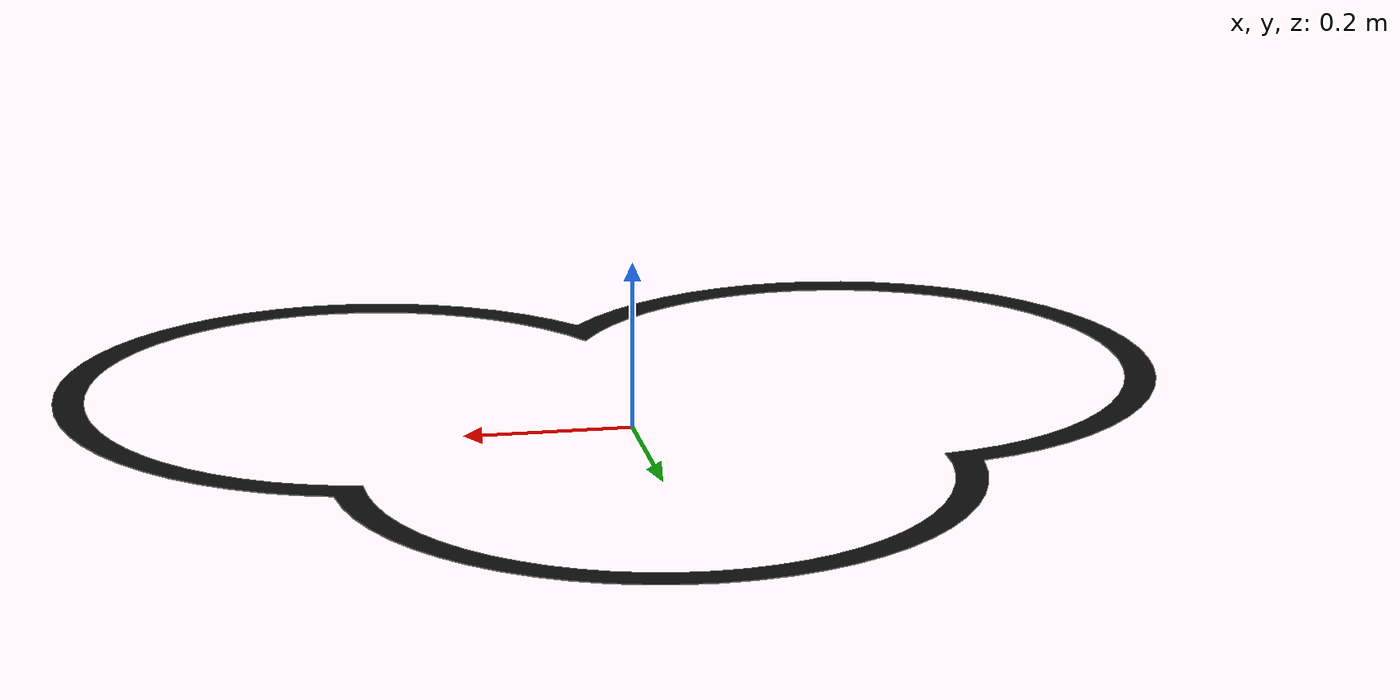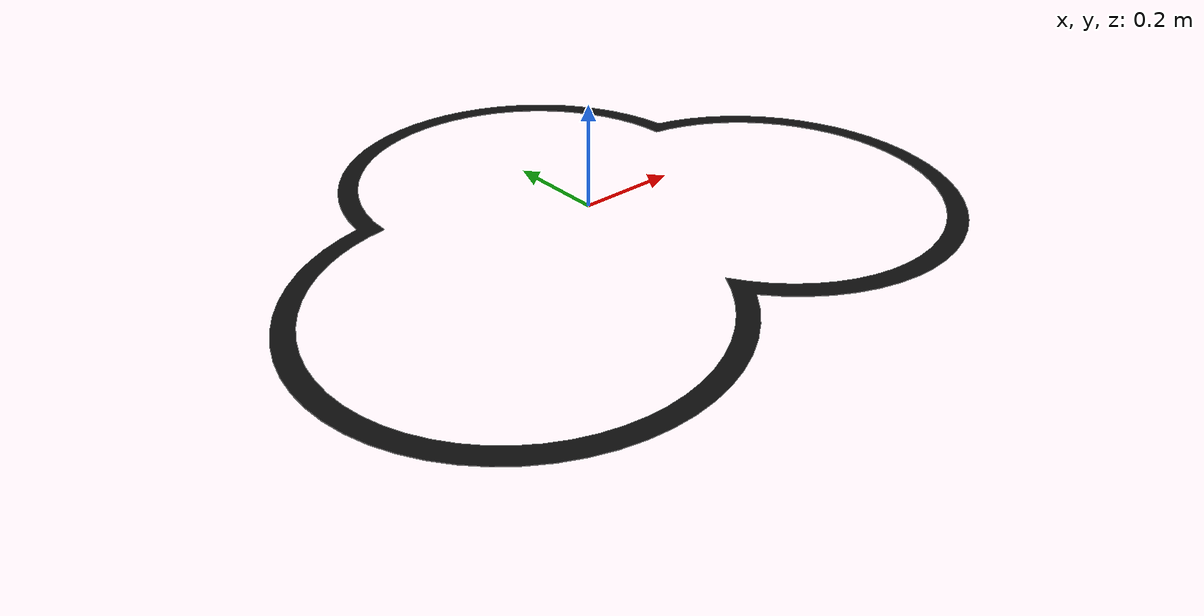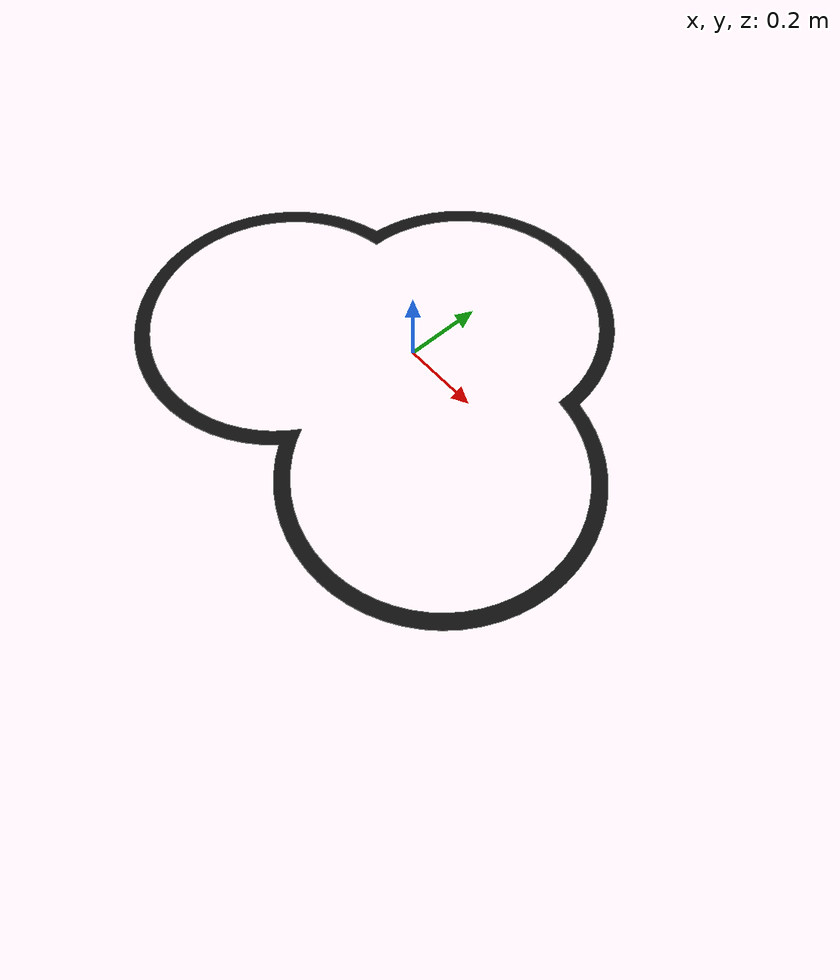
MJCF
<mujoco model="GoombaTrack">
  <asset>
    <mesh name="GoombaTrack" file="../../objects/tracks/GoombaTrack.obj" inertia="shell"
          scale="7.5 7.5 7.5"/>
  </asset>
  <worldbody>
    <geom name="line_GoombaTrack" type="mesh" mesh="GoombaTrack" quat="1 0 0 0"
          pos="-0.0000 0.1712 0.002"
          contype="0" conaffinity="0" group="2" rgba="0.05 0.05 0.05 1"/>
  </worldbody>
</mujoco>
